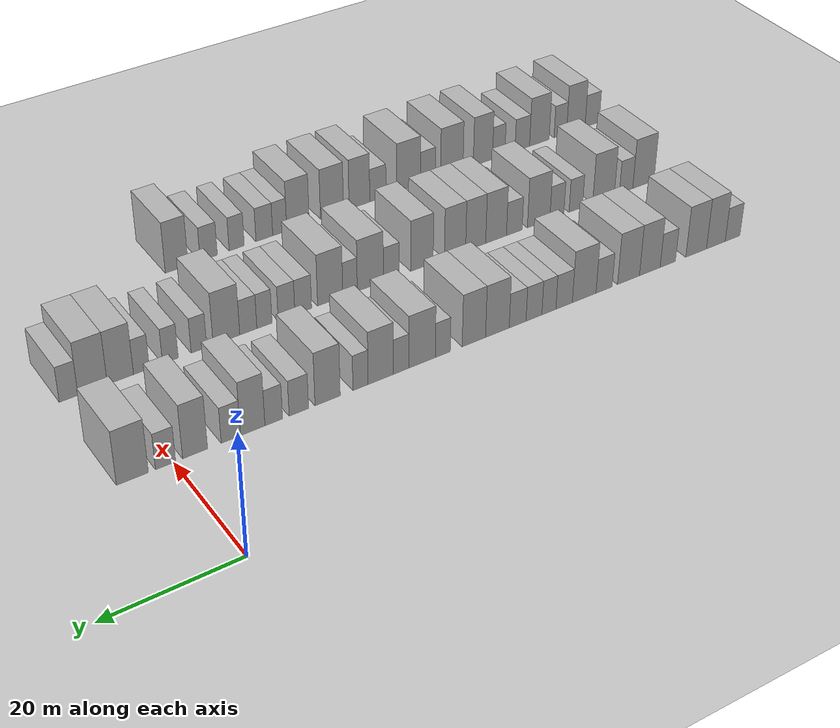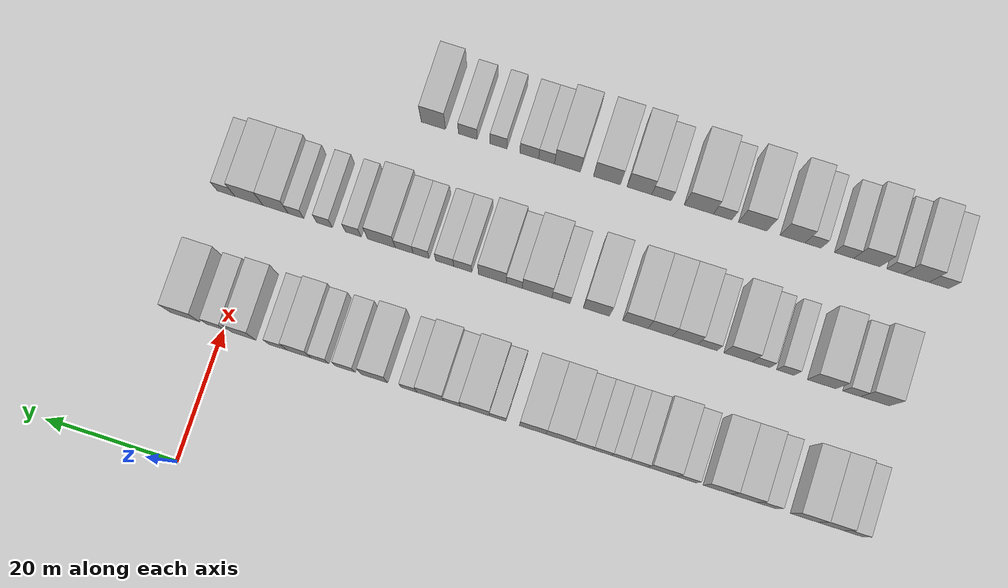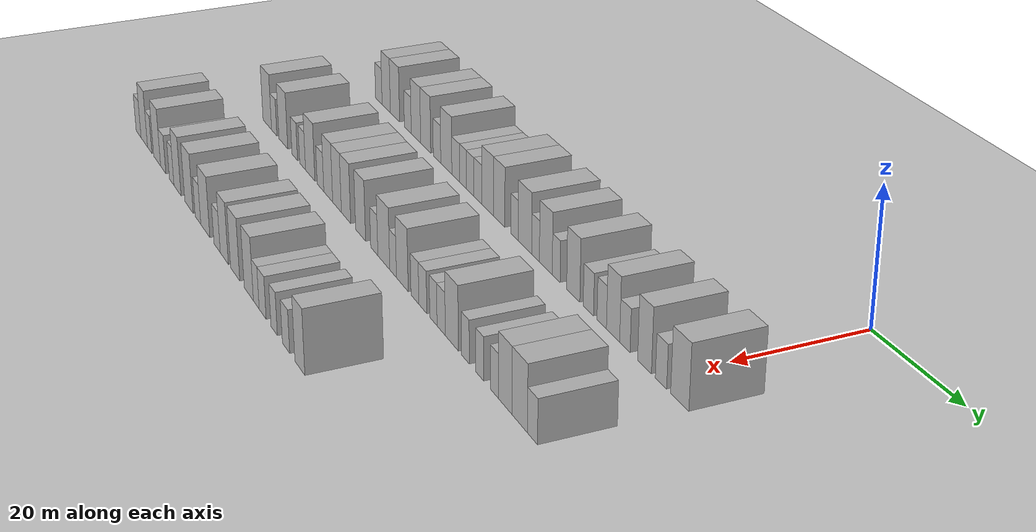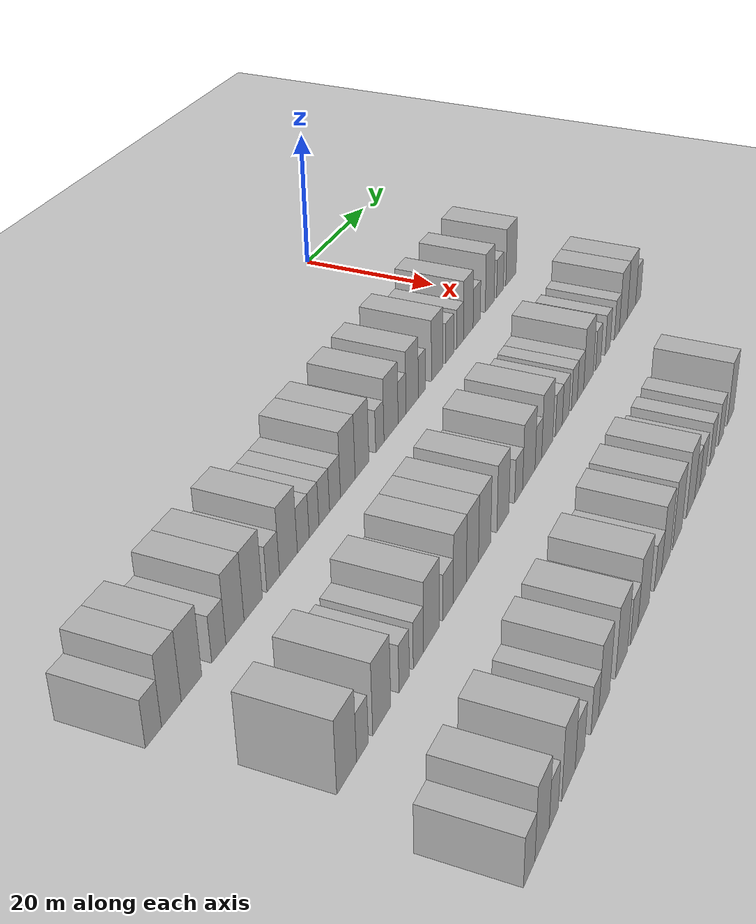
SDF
<sdf version="1.6">
 <world name="default">
  <include><name>ground_plane_1</name><uri>model://HANNAS_ground_plane</uri></include>
  <model name="building_62">
   <static>1</static>
   <pose>25.0000 -94.2913 0 0.000000 0.000000 0.000000</pose>
   <link name="link">
    <pose>0 0 3.00 0 0 0</pose>
    <collision name="collision"><geometry><box><size>10.0000 2.9294 6.0000</size></box></geometry></collision>
    <visual name="visual">
     <cast_shadows>0</cast_shadows>
     <geometry><box><size>10.0000 2.9294 6.0000</size></box></geometry>
     <material>
      <script>
       <uri>model://HANNAS_wall/materials/scripts</uri>
       <uri>model://HANNAS_wall/materials/textures</uri>
       <name>vrc/HANNAS_wall</name>
      </script>
     </material>
    </visual>
   </link>
  </model>
  <model name="building_63">
   <static>1</static>
   <pose>25.0000 -90.9836 0 0.000000 0.000000 0.000000</pose>
   <link name="link">
    <pose>0 0 4.50 0 0 0</pose>
    <collision name="collision"><geometry><box><size>10.0000 3.6861 9.0000</size></box></geometry></collision>
    <visual name="visual">
     <cast_shadows>0</cast_shadows>
     <geometry><box><size>10.0000 3.6861 9.0000</size></box></geometry>
     <material>
      <script>
       <uri>model://HANNAS_wall/materials/scripts</uri>
       <uri>model://HANNAS_wall/materials/textures</uri>
       <name>vrc/HANNAS_wall</name>
      </script>
     </material>
    </visual>
   </link>
  </model>
  <model name="building_64">
   <static>1</static>
   <pose>25.0000 -87.1364 0 0.000000 0.000000 0.000000</pose>
   <link name="link">
    <pose>0 0 4.50 0 0 0</pose>
    <collision name="collision"><geometry><box><size>10.0000 4.0083 9.0000</size></box></geometry></collision>
    <visual name="visual">
     <cast_shadows>0</cast_shadows>
     <geometry><box><size>10.0000 4.0083 9.0000</size></box></geometry>
     <material>
      <script>
       <uri>model://HANNAS_wall/materials/scripts</uri>
       <uri>model://HANNAS_wall/materials/textures</uri>
       <name>vrc/HANNAS_wall</name>
      </script>
     </material>
    </visual>
   </link>
  </model>
  <model name="building_65">
   <static>1</static>
   <pose>25.0000 -81.6730 0 0.000000 0.000000 0.000000</pose>
   <link name="link">
    <pose>0 0 3.00 0 0 0</pose>
    <collision name="collision"><geometry><box><size>10.0000 2.9185 6.0000</size></box></geometry></collision>
    <visual name="visual">
     <cast_shadows>0</cast_shadows>
     <geometry><box><size>10.0000 2.9185 6.0000</size></box></geometry>
     <material>
      <script>
       <uri>model://HANNAS_wall/materials/scripts</uri>
       <uri>model://HANNAS_wall/materials/textures</uri>
       <name>vrc/HANNAS_wall</name>
      </script>
     </material>
    </visual>
   </link>
  </model>
  <model name="building_66">
   <static>1</static>
   <pose>25.0000 -78.2645 0 0.000000 0.000000 0.000000</pose>
   <link name="link">
    <pose>0 0 4.50 0 0 0</pose>
    <collision name="collision"><geometry><box><size>10.0000 3.8984 9.0000</size></box></geometry></collision>
    <visual name="visual">
     <cast_shadows>0</cast_shadows>
     <geometry><box><size>10.0000 3.8984 9.0000</size></box></geometry>
     <material>
      <script>
       <uri>model://HANNAS_wall/materials/scripts</uri>
       <uri>model://HANNAS_wall/materials/textures</uri>
       <name>vrc/HANNAS_wall</name>
      </script>
     </material>
    </visual>
   </link>
  </model>
  <model name="building_67">
   <static>1</static>
   <pose>25.0000 -74.2709 0 0.000000 0.000000 0.000000</pose>
   <link name="link">
    <pose>0 0 4.50 0 0 0</pose>
    <collision name="collision"><geometry><box><size>10.0000 4.0889 9.0000</size></box></geometry></collision>
    <visual name="visual">
     <cast_shadows>0</cast_shadows>
     <geometry><box><size>10.0000 4.0889 9.0000</size></box></geometry>
     <material>
      <script>
       <uri>model://HANNAS_wall/materials/scripts</uri>
       <uri>model://HANNAS_wall/materials/textures</uri>
       <name>vrc/HANNAS_wall</name>
      </script>
     </material>
    </visual>
   </link>
  </model>
  <model name="building_68">
   <static>1</static>
   <pose>25.0000 -69.7475 0 0.000000 0.000000 0.000000</pose>
   <link name="link">
    <pose>0 0 3.00 0 0 0</pose>
    <collision name="collision"><geometry><box><size>10.0000 2.9579 6.0000</size></box></geometry></collision>
    <visual name="visual">
     <cast_shadows>0</cast_shadows>
     <geometry><box><size>10.0000 2.9579 6.0000</size></box></geometry>
     <material>
      <script>
       <uri>model://HANNAS_wall/materials/scripts</uri>
       <uri>model://HANNAS_wall/materials/textures</uri>
       <name>vrc/HANNAS_wall</name>
      </script>
     </material>
    </visual>
   </link>
  </model>
  <model name="building_69">
   <static>1</static>
   <pose>25.0000 -66.1230 0 0.000000 0.000000 0.000000</pose>
   <link name="link">
    <pose>0 0 4.50 0 0 0</pose>
    <collision name="collision"><geometry><box><size>10.0000 4.2911 9.0000</size></box></geometry></collision>
    <visual name="visual">
     <cast_shadows>0</cast_shadows>
     <geometry><box><size>10.0000 4.2911 9.0000</size></box></geometry>
     <material>
      <script>
       <uri>model://HANNAS_wall/materials/scripts</uri>
       <uri>model://HANNAS_wall/materials/textures</uri>
       <name>vrc/HANNAS_wall</name>
      </script>
     </material>
    </visual>
   </link>
  </model>
  <model name="building_70">
   <static>1</static>
   <pose>25.0000 -62.5057 0 0.000000 0.000000 0.000000</pose>
   <link name="link">
    <pose>0 0 3.00 0 0 0</pose>
    <collision name="collision"><geometry><box><size>10.0000 2.9437 6.0000</size></box></geometry></collision>
    <visual name="visual">
     <cast_shadows>0</cast_shadows>
     <geometry><box><size>10.0000 2.9437 6.0000</size></box></geometry>
     <material>
      <script>
       <uri>model://HANNAS_wall/materials/scripts</uri>
       <uri>model://HANNAS_wall/materials/textures</uri>
       <name>vrc/HANNAS_wall</name>
      </script>
     </material>
    </visual>
   </link>
  </model>
  <model name="building_71">
   <static>1</static>
   <pose>25.0000 -59.7899 0 0.000000 0.000000 0.000000</pose>
   <link name="link">
    <pose>0 0 3.00 0 0 0</pose>
    <collision name="collision"><geometry><box><size>10.0000 2.4878 6.0000</size></box></geometry></collision>
    <visual name="visual">
     <cast_shadows>0</cast_shadows>
     <geometry><box><size>10.0000 2.4878 6.0000</size></box></geometry>
     <material>
      <script>
       <uri>model://HANNAS_wall/materials/scripts</uri>
       <uri>model://HANNAS_wall/materials/textures</uri>
       <name>vrc/HANNAS_wall</name>
      </script>
     </material>
    </visual>
   </link>
  </model>
  <model name="building_72">
   <static>1</static>
   <pose>25.0000 -57.1538 0 0.000000 0.000000 0.000000</pose>
   <link name="link">
    <pose>0 0 3.00 0 0 0</pose>
    <collision name="collision"><geometry><box><size>10.0000 2.7846 6.0000</size></box></geometry></collision>
    <visual name="visual">
     <cast_shadows>0</cast_shadows>
     <geometry><box><size>10.0000 2.7846 6.0000</size></box></geometry>
     <material>
      <script>
       <uri>model://HANNAS_wall/materials/scripts</uri>
       <uri>model://HANNAS_wall/materials/textures</uri>
       <name>vrc/HANNAS_wall</name>
      </script>
     </material>
    </visual>
   </link>
  </model>
  <model name="building_73">
   <static>1</static>
   <pose>25.0000 -54.2979 0 0.000000 0.000000 0.000000</pose>
   <link name="link">
    <pose>0 0 3.00 0 0 0</pose>
    <collision name="collision"><geometry><box><size>10.0000 2.9271 6.0000</size></box></geometry></collision>
    <visual name="visual">
     <cast_shadows>0</cast_shadows>
     <geometry><box><size>10.0000 2.9271 6.0000</size></box></geometry>
     <material>
      <script>
       <uri>model://HANNAS_wall/materials/scripts</uri>
       <uri>model://HANNAS_wall/materials/textures</uri>
       <name>vrc/HANNAS_wall</name>
      </script>
     </material>
    </visual>
   </link>
  </model>
  <model name="building_74">
   <static>1</static>
   <pose>25.0000 -50.7964 0 0.000000 0.000000 0.000000</pose>
   <link name="link">
    <pose>0 0 4.50 0 0 0</pose>
    <collision name="collision"><geometry><box><size>10.0000 4.0761 9.0000</size></box></geometry></collision>
    <visual name="visual">
     <cast_shadows>0</cast_shadows>
     <geometry><box><size>10.0000 4.0761 9.0000</size></box></geometry>
     <material>
      <script>
       <uri>model://HANNAS_wall/materials/scripts</uri>
       <uri>model://HANNAS_wall/materials/textures</uri>
       <name>vrc/HANNAS_wall</name>
      </script>
     </material>
    </visual>
   </link>
  </model>
  <model name="building_75">
   <static>1</static>
   <pose>25.0000 -46.7807 0 0.000000 0.000000 0.000000</pose>
   <link name="link">
    <pose>0 0 4.50 0 0 0</pose>
    <collision name="collision"><geometry><box><size>10.0000 3.9552 9.0000</size></box></geometry></collision>
    <visual name="visual">
     <cast_shadows>0</cast_shadows>
     <geometry><box><size>10.0000 3.9552 9.0000</size></box></geometry>
     <material>
      <script>
       <uri>model://HANNAS_wall/materials/scripts</uri>
       <uri>model://HANNAS_wall/materials/textures</uri>
       <name>vrc/HANNAS_wall</name>
      </script>
     </material>
    </visual>
   </link>
  </model>
  <model name="building_76">
   <static>1</static>
   <pose>25.0000 -41.5595 0 0.000000 0.000000 0.000000</pose>
   <link name="link">
    <pose>0 0 3.00 0 0 0</pose>
    <collision name="collision"><geometry><box><size>10.0000 2.4872 6.0000</size></box></geometry></collision>
    <visual name="visual">
     <cast_shadows>0</cast_shadows>
     <geometry><box><size>10.0000 2.4872 6.0000</size></box></geometry>
     <material>
      <script>
       <uri>model://HANNAS_wall/materials/scripts</uri>
       <uri>model://HANNAS_wall/materials/textures</uri>
       <name>vrc/HANNAS_wall</name>
      </script>
     </material>
    </visual>
   </link>
  </model>
  <model name="building_77">
   <static>1</static>
   <pose>25.0000 -38.1234 0 0.000000 0.000000 0.000000</pose>
   <link name="link">
    <pose>0 0 4.50 0 0 0</pose>
    <collision name="collision"><geometry><box><size>10.0000 4.3851 9.0000</size></box></geometry></collision>
    <visual name="visual">
     <cast_shadows>0</cast_shadows>
     <geometry><box><size>10.0000 4.3851 9.0000</size></box></geometry>
     <material>
      <script>
       <uri>model://HANNAS_wall/materials/scripts</uri>
       <uri>model://HANNAS_wall/materials/textures</uri>
       <name>vrc/HANNAS_wall</name>
      </script>
     </material>
    </visual>
   </link>
  </model>
  <model name="building_78">
   <static>1</static>
   <pose>25.0000 -34.6785 0 0.000000 0.000000 0.000000</pose>
   <link name="link">
    <pose>0 0 3.00 0 0 0</pose>
    <collision name="collision"><geometry><box><size>10.0000 2.5047 6.0000</size></box></geometry></collision>
    <visual name="visual">
     <cast_shadows>0</cast_shadows>
     <geometry><box><size>10.0000 2.5047 6.0000</size></box></geometry>
     <material>
      <script>
       <uri>model://HANNAS_wall/materials/scripts</uri>
       <uri>model://HANNAS_wall/materials/textures</uri>
       <name>vrc/HANNAS_wall</name>
      </script>
     </material>
    </visual>
   </link>
  </model>
  <model name="building_79">
   <static>1</static>
   <pose>25.0000 -31.4091 0 0.000000 0.000000 0.000000</pose>
   <link name="link">
    <pose>0 0 4.50 0 0 0</pose>
    <collision name="collision"><geometry><box><size>10.0000 4.0342 9.0000</size></box></geometry></collision>
    <visual name="visual">
     <cast_shadows>0</cast_shadows>
     <geometry><box><size>10.0000 4.0342 9.0000</size></box></geometry>
     <material>
      <script>
       <uri>model://HANNAS_wall/materials/scripts</uri>
       <uri>model://HANNAS_wall/materials/textures</uri>
       <name>vrc/HANNAS_wall</name>
      </script>
     </material>
    </visual>
   </link>
  </model>
  <model name="building_80">
   <static>1</static>
   <pose>25.0000 -28.1832 0 0.000000 0.000000 0.000000</pose>
   <link name="link">
    <pose>0 0 3.00 0 0 0</pose>
    <collision name="collision"><geometry><box><size>10.0000 2.4177 6.0000</size></box></geometry></collision>
    <visual name="visual">
     <cast_shadows>0</cast_shadows>
     <geometry><box><size>10.0000 2.4177 6.0000</size></box></geometry>
     <material>
      <script>
       <uri>model://HANNAS_wall/materials/scripts</uri>
       <uri>model://HANNAS_wall/materials/textures</uri>
       <name>vrc/HANNAS_wall</name>
      </script>
     </material>
    </visual>
   </link>
  </model>
  <model name="building_81">
   <static>1</static>
   <pose>25.0000 -23.0104 0 0.000000 0.000000 0.000000</pose>
   <link name="link">
    <pose>0 0 4.50 0 0 0</pose>
    <collision name="collision"><geometry><box><size>10.0000 3.9279 9.0000</size></box></geometry></collision>
    <visual name="visual">
     <cast_shadows>0</cast_shadows>
     <geometry><box><size>10.0000 3.9279 9.0000</size></box></geometry>
     <material>
      <script>
       <uri>model://HANNAS_wall/materials/scripts</uri>
       <uri>model://HANNAS_wall/materials/textures</uri>
       <name>vrc/HANNAS_wall</name>
      </script>
     </material>
    </visual>
   </link>
  </model>
  <model name="building_82">
   <static>1</static>
   <pose>25.0000 -18.5566 0 0.000000 0.000000 0.000000</pose>
   <link name="link">
    <pose>0 0 3.00 0 0 0</pose>
    <collision name="collision"><geometry><box><size>10.0000 2.9796 6.0000</size></box></geometry></collision>
    <visual name="visual">
     <cast_shadows>0</cast_shadows>
     <geometry><box><size>10.0000 2.9796 6.0000</size></box></geometry>
     <material>
      <script>
       <uri>model://HANNAS_wall/materials/scripts</uri>
       <uri>model://HANNAS_wall/materials/textures</uri>
       <name>vrc/HANNAS_wall</name>
      </script>
     </material>
    </visual>
   </link>
  </model>
  <model name="building_83">
   <static>1</static>
   <pose>25.0000 -14.7358 0 0.000000 0.000000 0.000000</pose>
   <link name="link">
    <pose>0 0 3.00 0 0 0</pose>
    <collision name="collision"><geometry><box><size>10.0000 2.6619 6.0000</size></box></geometry></collision>
    <visual name="visual">
     <cast_shadows>0</cast_shadows>
     <geometry><box><size>10.0000 2.6619 6.0000</size></box></geometry>
     <material>
      <script>
       <uri>model://HANNAS_wall/materials/scripts</uri>
       <uri>model://HANNAS_wall/materials/textures</uri>
       <name>vrc/HANNAS_wall</name>
      </script>
     </material>
    </visual>
   </link>
  </model>
  <model name="building_84">
   <static>1</static>
   <pose>25.0000 -11.5752 0 0.000000 0.000000 0.000000</pose>
   <link name="link">
    <pose>0 0 4.50 0 0 0</pose>
    <collision name="collision"><geometry><box><size>10.0000 3.6592 9.0000</size></box></geometry></collision>
    <visual name="visual">
     <cast_shadows>0</cast_shadows>
     <geometry><box><size>10.0000 3.6592 9.0000</size></box></geometry>
     <material>
      <script>
       <uri>model://HANNAS_wall/materials/scripts</uri>
       <uri>model://HANNAS_wall/materials/textures</uri>
       <name>vrc/HANNAS_wall</name>
      </script>
     </material>
    </visual>
   </link>
  </model>
  <model name="building_85">
   <static>1</static>
   <pose>25.0000 -8.3293 0 0.000000 0.000000 0.000000</pose>
   <link name="link">
    <pose>0 0 3.00 0 0 0</pose>
    <collision name="collision"><geometry><box><size>10.0000 2.8327 6.0000</size></box></geometry></collision>
    <visual name="visual">
     <cast_shadows>0</cast_shadows>
     <geometry><box><size>10.0000 2.8327 6.0000</size></box></geometry>
     <material>
      <script>
       <uri>model://HANNAS_wall/materials/scripts</uri>
       <uri>model://HANNAS_wall/materials/textures</uri>
       <name>vrc/HANNAS_wall</name>
      </script>
     </material>
    </visual>
   </link>
  </model>
  <model name="building_86">
   <static>1</static>
   <pose>25.0000 -3.1027 0 0.000000 0.000000 0.000000</pose>
   <link name="link">
    <pose>0 0 4.50 0 0 0</pose>
    <collision name="collision"><geometry><box><size>10.0000 3.6206 9.0000</size></box></geometry></collision>
    <visual name="visual">
     <cast_shadows>0</cast_shadows>
     <geometry><box><size>10.0000 3.6206 9.0000</size></box></geometry>
     <material>
      <script>
       <uri>model://HANNAS_wall/materials/scripts</uri>
       <uri>model://HANNAS_wall/materials/textures</uri>
       <name>vrc/HANNAS_wall</name>
      </script>
     </material>
    </visual>
   </link>
  </model>
  <model name="building_87">
   <static>1</static>
   <pose>25.0000 1.1421 0 0.000000 0.000000 0.000000</pose>
   <link name="link">
    <pose>0 0 3.00 0 0 0</pose>
    <collision name="collision"><geometry><box><size>10.0000 2.8690 6.0000</size></box></geometry></collision>
    <visual name="visual">
     <cast_shadows>0</cast_shadows>
     <geometry><box><size>10.0000 2.8690 6.0000</size></box></geometry>
     <material>
      <script>
       <uri>model://HANNAS_wall/materials/scripts</uri>
       <uri>model://HANNAS_wall/materials/textures</uri>
       <name>vrc/HANNAS_wall</name>
      </script>
     </material>
    </visual>
   </link>
  </model>
  <model name="building_88">
   <static>1</static>
   <pose>25.0000 5.8203 0 0.000000 0.000000 0.000000</pose>
   <link name="link">
    <pose>0 0 4.50 0 0 0</pose>
    <collision name="collision"><geometry><box><size>10.0000 4.4875 9.0000</size></box></geometry></collision>
    <visual name="visual">
     <cast_shadows>0</cast_shadows>
     <geometry><box><size>10.0000 4.4875 9.0000</size></box></geometry>
     <material>
      <script>
       <uri>model://HANNAS_wall/materials/scripts</uri>
       <uri>model://HANNAS_wall/materials/textures</uri>
       <name>vrc/HANNAS_wall</name>
      </script>
     </material>
    </visual>
   </link>
  </model>
  <model name="building_230">
   <static>1</static>
   <pose>44.0000 -92.2120 0 0.000000 0.000000 0.000000</pose>
   <link name="link">
    <pose>0 0 4.50 0 0 0</pose>
    <collision name="collision"><geometry><box><size>10.0000 4.2855 9.0000</size></box></geometry></collision>
    <visual name="visual">
     <cast_shadows>0</cast_shadows>
     <geometry><box><size>10.0000 4.2855 9.0000</size></box></geometry>
     <material>
      <script>
       <uri>model://HANNAS_wall/materials/scripts</uri>
       <uri>model://HANNAS_wall/materials/textures</uri>
       <name>vrc/HANNAS_wall</name>
      </script>
     </material>
    </visual>
   </link>
  </model>
  <model name="building_231">
   <static>1</static>
   <pose>44.0000 -88.7351 0 0.000000 0.000000 0.000000</pose>
   <link name="link">
    <pose>0 0 3.00 0 0 0</pose>
    <collision name="collision"><geometry><box><size>10.0000 2.6683 6.0000</size></box></geometry></collision>
    <visual name="visual">
     <cast_shadows>0</cast_shadows>
     <geometry><box><size>10.0000 2.6683 6.0000</size></box></geometry>
     <material>
      <script>
       <uri>model://HANNAS_wall/materials/scripts</uri>
       <uri>model://HANNAS_wall/materials/textures</uri>
       <name>vrc/HANNAS_wall</name>
      </script>
     </material>
    </visual>
   </link>
  </model>
  <model name="building_232">
   <static>1</static>
   <pose>44.0000 -84.2660 0 0.000000 0.000000 0.000000</pose>
   <link name="link">
    <pose>0 0 4.50 0 0 0</pose>
    <collision name="collision"><geometry><box><size>10.0000 4.2700 9.0000</size></box></geometry></collision>
    <visual name="visual">
     <cast_shadows>0</cast_shadows>
     <geometry><box><size>10.0000 4.2700 9.0000</size></box></geometry>
     <material>
      <script>
       <uri>model://HANNAS_wall/materials/scripts</uri>
       <uri>model://HANNAS_wall/materials/textures</uri>
       <name>vrc/HANNAS_wall</name>
      </script>
     </material>
    </visual>
   </link>
  </model>
  <model name="building_233">
   <static>1</static>
   <pose>44.0000 -78.8281 0 0.000000 0.000000 0.000000</pose>
   <link name="link">
    <pose>0 0 3.00 0 0 0</pose>
    <collision name="collision"><geometry><box><size>10.0000 2.6058 6.0000</size></box></geometry></collision>
    <visual name="visual">
     <cast_shadows>0</cast_shadows>
     <geometry><box><size>10.0000 2.6058 6.0000</size></box></geometry>
     <material>
      <script>
       <uri>model://HANNAS_wall/materials/scripts</uri>
       <uri>model://HANNAS_wall/materials/textures</uri>
       <name>vrc/HANNAS_wall</name>
      </script>
     </material>
    </visual>
   </link>
  </model>
  <model name="building_234">
   <static>1</static>
   <pose>44.0000 -75.1882 0 0.000000 0.000000 0.000000</pose>
   <link name="link">
    <pose>0 0 3.00 0 0 0</pose>
    <collision name="collision"><geometry><box><size>10.0000 2.6739 6.0000</size></box></geometry></collision>
    <visual name="visual">
     <cast_shadows>0</cast_shadows>
     <geometry><box><size>10.0000 2.6739 6.0000</size></box></geometry>
     <material>
      <script>
       <uri>model://HANNAS_wall/materials/scripts</uri>
       <uri>model://HANNAS_wall/materials/textures</uri>
       <name>vrc/HANNAS_wall</name>
      </script>
     </material>
    </visual>
   </link>
  </model>
  <model name="building_235">
   <static>1</static>
   <pose>44.0000 -71.7204 0 0.000000 0.000000 0.000000</pose>
   <link name="link">
    <pose>0 0 4.50 0 0 0</pose>
    <collision name="collision"><geometry><box><size>10.0000 4.2618 9.0000</size></box></geometry></collision>
    <visual name="visual">
     <cast_shadows>0</cast_shadows>
     <geometry><box><size>10.0000 4.2618 9.0000</size></box></geometry>
     <material>
      <script>
       <uri>model://HANNAS_wall/materials/scripts</uri>
       <uri>model://HANNAS_wall/materials/textures</uri>
       <name>vrc/HANNAS_wall</name>
      </script>
     </material>
    </visual>
   </link>
  </model>
  <model name="building_236">
   <static>1</static>
   <pose>44.0000 -67.1307 0 0.000000 0.000000 0.000000</pose>
   <link name="link">
    <pose>0 0 3.00 0 0 0</pose>
    <collision name="collision"><geometry><box><size>10.0000 2.9176 6.0000</size></box></geometry></collision>
    <visual name="visual">
     <cast_shadows>0</cast_shadows>
     <geometry><box><size>10.0000 2.9176 6.0000</size></box></geometry>
     <material>
      <script>
       <uri>model://HANNAS_wall/materials/scripts</uri>
       <uri>model://HANNAS_wall/materials/textures</uri>
       <name>vrc/HANNAS_wall</name>
      </script>
     </material>
    </visual>
   </link>
  </model>
  <model name="building_237">
   <static>1</static>
   <pose>44.0000 -63.7560 0 0.000000 0.000000 0.000000</pose>
   <link name="link">
    <pose>0 0 4.50 0 0 0</pose>
    <collision name="collision"><geometry><box><size>10.0000 3.8317 9.0000</size></box></geometry></collision>
    <visual name="visual">
     <cast_shadows>0</cast_shadows>
     <geometry><box><size>10.0000 3.8317 9.0000</size></box></geometry>
     <material>
      <script>
       <uri>model://HANNAS_wall/materials/scripts</uri>
       <uri>model://HANNAS_wall/materials/textures</uri>
       <name>vrc/HANNAS_wall</name>
      </script>
     </material>
    </visual>
   </link>
  </model>
  <model name="building_238">
   <static>1</static>
   <pose>44.0000 -60.0075 0 0.000000 0.000000 0.000000</pose>
   <link name="link">
    <pose>0 0 4.50 0 0 0</pose>
    <collision name="collision"><geometry><box><size>10.0000 3.6653 9.0000</size></box></geometry></collision>
    <visual name="visual">
     <cast_shadows>0</cast_shadows>
     <geometry><box><size>10.0000 3.6653 9.0000</size></box></geometry>
     <material>
      <script>
       <uri>model://HANNAS_wall/materials/scripts</uri>
       <uri>model://HANNAS_wall/materials/textures</uri>
       <name>vrc/HANNAS_wall</name>
      </script>
     </material>
    </visual>
   </link>
  </model>
  <model name="building_239">
   <static>1</static>
   <pose>44.0000 -56.2583 0 0.000000 0.000000 0.000000</pose>
   <link name="link">
    <pose>0 0 4.50 0 0 0</pose>
    <collision name="collision"><geometry><box><size>10.0000 3.8332 9.0000</size></box></geometry></collision>
    <visual name="visual">
     <cast_shadows>0</cast_shadows>
     <geometry><box><size>10.0000 3.8332 9.0000</size></box></geometry>
     <material>
      <script>
       <uri>model://HANNAS_wall/materials/scripts</uri>
       <uri>model://HANNAS_wall/materials/textures</uri>
       <name>vrc/HANNAS_wall</name>
      </script>
     </material>
    </visual>
   </link>
  </model>
  <model name="building_240">
   <static>1</static>
   <pose>44.0000 -50.3608 0 0.000000 0.000000 0.000000</pose>
   <link name="link">
    <pose>0 0 4.50 0 0 0</pose>
    <collision name="collision"><geometry><box><size>10.0000 3.9616 9.0000</size></box></geometry></collision>
    <visual name="visual">
     <cast_shadows>0</cast_shadows>
     <geometry><box><size>10.0000 3.9616 9.0000</size></box></geometry>
     <material>
      <script>
       <uri>model://HANNAS_wall/materials/scripts</uri>
       <uri>model://HANNAS_wall/materials/textures</uri>
       <name>vrc/HANNAS_wall</name>
      </script>
     </material>
    </visual>
   </link>
  </model>
  <model name="building_241">
   <static>1</static>
   <pose>44.0000 -45.0014 0 0.000000 0.000000 0.000000</pose>
   <link name="link">
    <pose>0 0 3.00 0 0 0</pose>
    <collision name="collision"><geometry><box><size>10.0000 2.7573 6.0000</size></box></geometry></collision>
    <visual name="visual">
     <cast_shadows>0</cast_shadows>
     <geometry><box><size>10.0000 2.7573 6.0000</size></box></geometry>
     <material>
      <script>
       <uri>model://HANNAS_wall/materials/scripts</uri>
       <uri>model://HANNAS_wall/materials/textures</uri>
       <name>vrc/HANNAS_wall</name>
      </script>
     </material>
    </visual>
   </link>
  </model>
  <model name="building_242">
   <static>1</static>
   <pose>44.0000 -41.3822 0 0.000000 0.000000 0.000000</pose>
   <link name="link">
    <pose>0 0 4.50 0 0 0</pose>
    <collision name="collision"><geometry><box><size>10.0000 4.4811 9.0000</size></box></geometry></collision>
    <visual name="visual">
     <cast_shadows>0</cast_shadows>
     <geometry><box><size>10.0000 4.4811 9.0000</size></box></geometry>
     <material>
      <script>
       <uri>model://HANNAS_wall/materials/scripts</uri>
       <uri>model://HANNAS_wall/materials/textures</uri>
       <name>vrc/HANNAS_wall</name>
      </script>
     </material>
    </visual>
   </link>
  </model>
  <model name="building_243">
   <static>1</static>
   <pose>44.0000 -37.9151 0 0.000000 0.000000 0.000000</pose>
   <link name="link">
    <pose>0 0 3.00 0 0 0</pose>
    <collision name="collision"><geometry><box><size>10.0000 2.4532 6.0000</size></box></geometry></collision>
    <visual name="visual">
     <cast_shadows>0</cast_shadows>
     <geometry><box><size>10.0000 2.4532 6.0000</size></box></geometry>
     <material>
      <script>
       <uri>model://HANNAS_wall/materials/scripts</uri>
       <uri>model://HANNAS_wall/materials/textures</uri>
       <name>vrc/HANNAS_wall</name>
      </script>
     </material>
    </visual>
   </link>
  </model>
  <model name="building_244">
   <static>1</static>
   <pose>44.0000 -34.5697 0 0.000000 0.000000 0.000000</pose>
   <link name="link">
    <pose>0 0 4.50 0 0 0</pose>
    <collision name="collision"><geometry><box><size>10.0000 4.2376 9.0000</size></box></geometry></collision>
    <visual name="visual">
     <cast_shadows>0</cast_shadows>
     <geometry><box><size>10.0000 4.2376 9.0000</size></box></geometry>
     <material>
      <script>
       <uri>model://HANNAS_wall/materials/scripts</uri>
       <uri>model://HANNAS_wall/materials/textures</uri>
       <name>vrc/HANNAS_wall</name>
      </script>
     </material>
    </visual>
   </link>
  </model>
  <model name="building_245">
   <static>1</static>
   <pose>44.0000 -30.0746 0 0.000000 0.000000 0.000000</pose>
   <link name="link">
    <pose>0 0 3.00 0 0 0</pose>
    <collision name="collision"><geometry><box><size>10.0000 2.7525 6.0000</size></box></geometry></collision>
    <visual name="visual">
     <cast_shadows>0</cast_shadows>
     <geometry><box><size>10.0000 2.7525 6.0000</size></box></geometry>
     <material>
      <script>
       <uri>model://HANNAS_wall/materials/scripts</uri>
       <uri>model://HANNAS_wall/materials/textures</uri>
       <name>vrc/HANNAS_wall</name>
      </script>
     </material>
    </visual>
   </link>
  </model>
  <model name="building_246">
   <static>1</static>
   <pose>44.0000 -27.3279 0 0.000000 0.000000 0.000000</pose>
   <link name="link">
    <pose>0 0 3.00 0 0 0</pose>
    <collision name="collision"><geometry><box><size>10.0000 2.7408 6.0000</size></box></geometry></collision>
    <visual name="visual">
     <cast_shadows>0</cast_shadows>
     <geometry><box><size>10.0000 2.7408 6.0000</size></box></geometry>
     <material>
      <script>
       <uri>model://HANNAS_wall/materials/scripts</uri>
       <uri>model://HANNAS_wall/materials/textures</uri>
       <name>vrc/HANNAS_wall</name>
      </script>
     </material>
    </visual>
   </link>
  </model>
  <model name="building_247">
   <static>1</static>
   <pose>44.0000 -23.7330 0 0.000000 0.000000 0.000000</pose>
   <link name="link">
    <pose>0 0 3.00 0 0 0</pose>
    <collision name="collision"><geometry><box><size>10.0000 2.4491 6.0000</size></box></geometry></collision>
    <visual name="visual">
     <cast_shadows>0</cast_shadows>
     <geometry><box><size>10.0000 2.4491 6.0000</size></box></geometry>
     <material>
      <script>
       <uri>model://HANNAS_wall/materials/scripts</uri>
       <uri>model://HANNAS_wall/materials/textures</uri>
       <name>vrc/HANNAS_wall</name>
      </script>
     </material>
    </visual>
   </link>
  </model>
  <model name="building_248">
   <static>1</static>
   <pose>44.0000 -21.1385 0 0.000000 0.000000 0.000000</pose>
   <link name="link">
    <pose>0 0 3.00 0 0 0</pose>
    <collision name="collision"><geometry><box><size>10.0000 2.7399 6.0000</size></box></geometry></collision>
    <visual name="visual">
     <cast_shadows>0</cast_shadows>
     <geometry><box><size>10.0000 2.7399 6.0000</size></box></geometry>
     <material>
      <script>
       <uri>model://HANNAS_wall/materials/scripts</uri>
       <uri>model://HANNAS_wall/materials/textures</uri>
       <name>vrc/HANNAS_wall</name>
      </script>
     </material>
    </visual>
   </link>
  </model>
  <model name="building_249">
   <static>1</static>
   <pose>44.0000 -17.6541 0 0.000000 0.000000 0.000000</pose>
   <link name="link">
    <pose>0 0 4.50 0 0 0</pose>
    <collision name="collision"><geometry><box><size>10.0000 4.2288 9.0000</size></box></geometry></collision>
    <visual name="visual">
     <cast_shadows>0</cast_shadows>
     <geometry><box><size>10.0000 4.2288 9.0000</size></box></geometry>
     <material>
      <script>
       <uri>model://HANNAS_wall/materials/scripts</uri>
       <uri>model://HANNAS_wall/materials/textures</uri>
       <name>vrc/HANNAS_wall</name>
      </script>
     </material>
    </visual>
   </link>
  </model>
  <model name="building_250">
   <static>1</static>
   <pose>44.0000 -13.3273 0 0.000000 0.000000 0.000000</pose>
   <link name="link">
    <pose>0 0 3.00 0 0 0</pose>
    <collision name="collision"><geometry><box><size>10.0000 2.4249 6.0000</size></box></geometry></collision>
    <visual name="visual">
     <cast_shadows>0</cast_shadows>
     <geometry><box><size>10.0000 2.4249 6.0000</size></box></geometry>
     <material>
      <script>
       <uri>model://HANNAS_wall/materials/scripts</uri>
       <uri>model://HANNAS_wall/materials/textures</uri>
       <name>vrc/HANNAS_wall</name>
      </script>
     </material>
    </visual>
   </link>
  </model>
  <model name="building_251">
   <static>1</static>
   <pose>44.0000 -8.9117 0 0.000000 0.000000 0.000000</pose>
   <link name="link">
    <pose>0 0 3.00 0 0 0</pose>
    <collision name="collision"><geometry><box><size>10.0000 2.4062 6.0000</size></box></geometry></collision>
    <visual name="visual">
     <cast_shadows>0</cast_shadows>
     <geometry><box><size>10.0000 2.4062 6.0000</size></box></geometry>
     <material>
      <script>
       <uri>model://HANNAS_wall/materials/scripts</uri>
       <uri>model://HANNAS_wall/materials/textures</uri>
       <name>vrc/HANNAS_wall</name>
      </script>
     </material>
    </visual>
   </link>
  </model>
  <model name="building_252">
   <static>1</static>
   <pose>44.0000 -4.5066 0 0.000000 0.000000 0.000000</pose>
   <link name="link">
    <pose>0 0 3.00 0 0 0</pose>
    <collision name="collision"><geometry><box><size>10.0000 2.4039 6.0000</size></box></geometry></collision>
    <visual name="visual">
     <cast_shadows>0</cast_shadows>
     <geometry><box><size>10.0000 2.4039 6.0000</size></box></geometry>
     <material>
      <script>
       <uri>model://HANNAS_wall/materials/scripts</uri>
       <uri>model://HANNAS_wall/materials/textures</uri>
       <name>vrc/HANNAS_wall</name>
      </script>
     </material>
    </visual>
   </link>
  </model>
  <model name="building_253">
   <static>1</static>
   <pose>44.0000 -1.3485 0 0.000000 0.000000 0.000000</pose>
   <link name="link">
    <pose>0 0 4.50 0 0 0</pose>
    <collision name="collision"><geometry><box><size>10.0000 3.9124 9.0000</size></box></geometry></collision>
    <visual name="visual">
     <cast_shadows>0</cast_shadows>
     <geometry><box><size>10.0000 3.9124 9.0000</size></box></geometry>
     <material>
      <script>
       <uri>model://HANNAS_wall/materials/scripts</uri>
       <uri>model://HANNAS_wall/materials/textures</uri>
       <name>vrc/HANNAS_wall</name>
      </script>
     </material>
    </visual>
   </link>
  </model>
  <model name="building_254">
   <static>1</static>
   <pose>44.0000 2.7650 0 0.000000 0.000000 0.000000</pose>
   <link name="link">
    <pose>0 0 4.50 0 0 0</pose>
    <collision name="collision"><geometry><box><size>10.0000 4.3145 9.0000</size></box></geometry></collision>
    <visual name="visual">
     <cast_shadows>0</cast_shadows>
     <geometry><box><size>10.0000 4.3145 9.0000</size></box></geometry>
     <material>
      <script>
       <uri>model://HANNAS_wall/materials/scripts</uri>
       <uri>model://HANNAS_wall/materials/textures</uri>
       <name>vrc/HANNAS_wall</name>
      </script>
     </material>
    </visual>
   </link>
  </model>
  <model name="building_255">
   <static>1</static>
   <pose>44.0000 6.2912 0 0.000000 0.000000 0.000000</pose>
   <link name="link">
    <pose>0 0 3.00 0 0 0</pose>
    <collision name="collision"><geometry><box><size>10.0000 2.7380 6.0000</size></box></geometry></collision>
    <visual name="visual">
     <cast_shadows>0</cast_shadows>
     <geometry><box><size>10.0000 2.7380 6.0000</size></box></geometry>
     <material>
      <script>
       <uri>model://HANNAS_wall/materials/scripts</uri>
       <uri>model://HANNAS_wall/materials/textures</uri>
       <name>vrc/HANNAS_wall</name>
      </script>
     </material>
    </visual>
   </link>
  </model>
  <model name="building_407">
   <static>1</static>
   <pose>63.0000 -96.4798 0 0.000000 0.000000 0.000000</pose>
   <link name="link">
    <pose>0 0 3.00 0 0 0</pose>
    <collision name="collision"><geometry><box><size>10.0000 2.9730 6.0000</size></box></geometry></collision>
    <visual name="visual">
     <cast_shadows>0</cast_shadows>
     <geometry><box><size>10.0000 2.9730 6.0000</size></box></geometry>
     <material>
      <script>
       <uri>model://HANNAS_wall/materials/scripts</uri>
       <uri>model://HANNAS_wall/materials/textures</uri>
       <name>vrc/HANNAS_wall</name>
      </script>
     </material>
    </visual>
   </link>
  </model>
  <model name="building_408">
   <static>1</static>
   <pose>63.0000 -93.0751 0 0.000000 0.000000 0.000000</pose>
   <link name="link">
    <pose>0 0 4.50 0 0 0</pose>
    <collision name="collision"><geometry><box><size>10.0000 3.8363 9.0000</size></box></geometry></collision>
    <visual name="visual">
     <cast_shadows>0</cast_shadows>
     <geometry><box><size>10.0000 3.8363 9.0000</size></box></geometry>
     <material>
      <script>
       <uri>model://HANNAS_wall/materials/scripts</uri>
       <uri>model://HANNAS_wall/materials/textures</uri>
       <name>vrc/HANNAS_wall</name>
      </script>
     </material>
    </visual>
   </link>
  </model>
  <model name="building_409">
   <static>1</static>
   <pose>63.0000 -89.8728 0 0.000000 0.000000 0.000000</pose>
   <link name="link">
    <pose>0 0 3.00 0 0 0</pose>
    <collision name="collision"><geometry><box><size>10.0000 2.5684 6.0000</size></box></geometry></collision>
    <visual name="visual">
     <cast_shadows>0</cast_shadows>
     <geometry><box><size>10.0000 2.5684 6.0000</size></box></geometry>
     <material>
      <script>
       <uri>model://HANNAS_wall/materials/scripts</uri>
       <uri>model://HANNAS_wall/materials/textures</uri>
       <name>vrc/HANNAS_wall</name>
      </script>
     </material>
    </visual>
   </link>
  </model>
  <model name="building_410">
   <static>1</static>
   <pose>63.0000 -85.6024 0 0.000000 0.000000 0.000000</pose>
   <link name="link">
    <pose>0 0 4.50 0 0 0</pose>
    <collision name="collision"><geometry><box><size>10.0000 3.9724 9.0000</size></box></geometry></collision>
    <visual name="visual">
     <cast_shadows>0</cast_shadows>
     <geometry><box><size>10.0000 3.9724 9.0000</size></box></geometry>
     <material>
      <script>
       <uri>model://HANNAS_wall/materials/scripts</uri>
       <uri>model://HANNAS_wall/materials/textures</uri>
       <name>vrc/HANNAS_wall</name>
      </script>
     </material>
    </visual>
   </link>
  </model>
  <model name="building_411">
   <static>1</static>
   <pose>63.0000 -82.1490 0 0.000000 0.000000 0.000000</pose>
   <link name="link">
    <pose>0 0 3.00 0 0 0</pose>
    <collision name="collision"><geometry><box><size>10.0000 2.9343 6.0000</size></box></geometry></collision>
    <visual name="visual">
     <cast_shadows>0</cast_shadows>
     <geometry><box><size>10.0000 2.9343 6.0000</size></box></geometry>
     <material>
      <script>
       <uri>model://HANNAS_wall/materials/scripts</uri>
       <uri>model://HANNAS_wall/materials/textures</uri>
       <name>vrc/HANNAS_wall</name>
      </script>
     </material>
    </visual>
   </link>
  </model>
  <model name="building_412">
   <static>1</static>
   <pose>63.0000 -77.4513 0 0.000000 0.000000 0.000000</pose>
   <link name="link">
    <pose>0 0 3.00 0 0 0</pose>
    <collision name="collision"><geometry><box><size>10.0000 2.4612 6.0000</size></box></geometry></collision>
    <visual name="visual">
     <cast_shadows>0</cast_shadows>
     <geometry><box><size>10.0000 2.4612 6.0000</size></box></geometry>
     <material>
      <script>
       <uri>model://HANNAS_wall/materials/scripts</uri>
       <uri>model://HANNAS_wall/materials/textures</uri>
       <name>vrc/HANNAS_wall</name>
      </script>
     </material>
    </visual>
   </link>
  </model>
  <model name="building_413">
   <static>1</static>
   <pose>63.0000 -74.3368 0 0.000000 0.000000 0.000000</pose>
   <link name="link">
    <pose>0 0 4.50 0 0 0</pose>
    <collision name="collision"><geometry><box><size>10.0000 3.7678 9.0000</size></box></geometry></collision>
    <visual name="visual">
     <cast_shadows>0</cast_shadows>
     <geometry><box><size>10.0000 3.7678 9.0000</size></box></geometry>
     <material>
      <script>
       <uri>model://HANNAS_wall/materials/scripts</uri>
       <uri>model://HANNAS_wall/materials/textures</uri>
       <name>vrc/HANNAS_wall</name>
      </script>
     </material>
    </visual>
   </link>
  </model>
  <model name="building_414">
   <static>1</static>
   <pose>63.0000 -68.2939 0 0.000000 0.000000 0.000000</pose>
   <link name="link">
    <pose>0 0 4.50 0 0 0</pose>
    <collision name="collision"><geometry><box><size>10.0000 4.3180 9.0000</size></box></geometry></collision>
    <visual name="visual">
     <cast_shadows>0</cast_shadows>
     <geometry><box><size>10.0000 4.3180 9.0000</size></box></geometry>
     <material>
      <script>
       <uri>model://HANNAS_wall/materials/scripts</uri>
       <uri>model://HANNAS_wall/materials/textures</uri>
       <name>vrc/HANNAS_wall</name>
      </script>
     </material>
    </visual>
   </link>
  </model>
  <model name="building_415">
   <static>1</static>
   <pose>63.0000 -63.7222 0 0.000000 0.000000 0.000000</pose>
   <link name="link">
    <pose>0 0 3.00 0 0 0</pose>
    <collision name="collision"><geometry><box><size>10.0000 2.8254 6.0000</size></box></geometry></collision>
    <visual name="visual">
     <cast_shadows>0</cast_shadows>
     <geometry><box><size>10.0000 2.8254 6.0000</size></box></geometry>
     <material>
      <script>
       <uri>model://HANNAS_wall/materials/scripts</uri>
       <uri>model://HANNAS_wall/materials/textures</uri>
       <name>vrc/HANNAS_wall</name>
      </script>
     </material>
    </visual>
   </link>
  </model>
  <model name="building_416">
   <static>1</static>
   <pose>63.0000 -60.0894 0 0.000000 0.000000 0.000000</pose>
   <link name="link">
    <pose>0 0 4.50 0 0 0</pose>
    <collision name="collision"><geometry><box><size>10.0000 4.4404 9.0000</size></box></geometry></collision>
    <visual name="visual">
     <cast_shadows>0</cast_shadows>
     <geometry><box><size>10.0000 4.4404 9.0000</size></box></geometry>
     <material>
      <script>
       <uri>model://HANNAS_wall/materials/scripts</uri>
       <uri>model://HANNAS_wall/materials/textures</uri>
       <name>vrc/HANNAS_wall</name>
      </script>
     </material>
    </visual>
   </link>
  </model>
  <model name="building_417">
   <static>1</static>
   <pose>63.0000 -54.3757 0 0.000000 0.000000 0.000000</pose>
   <link name="link">
    <pose>0 0 3.00 0 0 0</pose>
    <collision name="collision"><geometry><box><size>10.0000 2.9869 6.0000</size></box></geometry></collision>
    <visual name="visual">
     <cast_shadows>0</cast_shadows>
     <geometry><box><size>10.0000 2.9869 6.0000</size></box></geometry>
     <material>
      <script>
       <uri>model://HANNAS_wall/materials/scripts</uri>
       <uri>model://HANNAS_wall/materials/textures</uri>
       <name>vrc/HANNAS_wall</name>
      </script>
     </material>
    </visual>
   </link>
  </model>
  <model name="building_418">
   <static>1</static>
   <pose>63.0000 -50.9946 0 0.000000 0.000000 0.000000</pose>
   <link name="link">
    <pose>0 0 4.50 0 0 0</pose>
    <collision name="collision"><geometry><box><size>10.0000 3.7754 9.0000</size></box></geometry></collision>
    <visual name="visual">
     <cast_shadows>0</cast_shadows>
     <geometry><box><size>10.0000 3.7754 9.0000</size></box></geometry>
     <material>
      <script>
       <uri>model://HANNAS_wall/materials/scripts</uri>
       <uri>model://HANNAS_wall/materials/textures</uri>
       <name>vrc/HANNAS_wall</name>
      </script>
     </material>
    </visual>
   </link>
  </model>
  <model name="building_419">
   <static>1</static>
   <pose>63.0000 -46.0370 0 0.000000 0.000000 0.000000</pose>
   <link name="link">
    <pose>0 0 4.50 0 0 0</pose>
    <collision name="collision"><geometry><box><size>10.0000 4.1398 9.0000</size></box></geometry></collision>
    <visual name="visual">
     <cast_shadows>0</cast_shadows>
     <geometry><box><size>10.0000 4.1398 9.0000</size></box></geometry>
     <material>
      <script>
       <uri>model://HANNAS_wall/materials/scripts</uri>
       <uri>model://HANNAS_wall/materials/textures</uri>
       <name>vrc/HANNAS_wall</name>
      </script>
     </material>
    </visual>
   </link>
  </model>
  <model name="building_420">
   <static>1</static>
   <pose>63.0000 -39.9859 0 0.000000 0.000000 0.000000</pose>
   <link name="link">
    <pose>0 0 4.50 0 0 0</pose>
    <collision name="collision"><geometry><box><size>10.0000 3.9625 9.0000</size></box></geometry></collision>
    <visual name="visual">
     <cast_shadows>0</cast_shadows>
     <geometry><box><size>10.0000 3.9625 9.0000</size></box></geometry>
     <material>
      <script>
       <uri>model://HANNAS_wall/materials/scripts</uri>
       <uri>model://HANNAS_wall/materials/textures</uri>
       <name>vrc/HANNAS_wall</name>
      </script>
     </material>
    </visual>
   </link>
  </model>
  <model name="building_421">
   <static>1</static>
   <pose>63.0000 -36.7809 0 0.000000 0.000000 0.000000</pose>
   <link name="link">
    <pose>0 0 3.00 0 0 0</pose>
    <collision name="collision"><geometry><box><size>10.0000 2.4475 6.0000</size></box></geometry></collision>
    <visual name="visual">
     <cast_shadows>0</cast_shadows>
     <geometry><box><size>10.0000 2.4475 6.0000</size></box></geometry>
     <material>
      <script>
       <uri>model://HANNAS_wall/materials/scripts</uri>
       <uri>model://HANNAS_wall/materials/textures</uri>
       <name>vrc/HANNAS_wall</name>
      </script>
     </material>
    </visual>
   </link>
  </model>
  <model name="building_422">
   <static>1</static>
   <pose>63.0000 -34.1074 0 0.000000 0.000000 0.000000</pose>
   <link name="link">
    <pose>0 0 3.00 0 0 0</pose>
    <collision name="collision"><geometry><box><size>10.0000 2.8996 6.0000</size></box></geometry></collision>
    <visual name="visual">
     <cast_shadows>0</cast_shadows>
     <geometry><box><size>10.0000 2.8996 6.0000</size></box></geometry>
     <material>
      <script>
       <uri>model://HANNAS_wall/materials/scripts</uri>
       <uri>model://HANNAS_wall/materials/textures</uri>
       <name>vrc/HANNAS_wall</name>
      </script>
     </material>
    </visual>
   </link>
  </model>
  <model name="building_423">
   <static>1</static>
   <pose>63.0000 -29.3668 0 0.000000 0.000000 0.000000</pose>
   <link name="link">
    <pose>0 0 3.00 0 0 0</pose>
    <collision name="collision"><geometry><box><size>10.0000 2.5815 6.0000</size></box></geometry></collision>
    <visual name="visual">
     <cast_shadows>0</cast_shadows>
     <geometry><box><size>10.0000 2.5815 6.0000</size></box></geometry>
     <material>
      <script>
       <uri>model://HANNAS_wall/materials/scripts</uri>
       <uri>model://HANNAS_wall/materials/textures</uri>
       <name>vrc/HANNAS_wall</name>
      </script>
     </material>
    </visual>
   </link>
  </model>
  <model name="building_424">
   <static>1</static>
   <pose>63.0000 -24.6372 0 0.000000 0.000000 0.000000</pose>
   <link name="link">
    <pose>0 0 3.00 0 0 0</pose>
    <collision name="collision"><geometry><box><size>10.0000 2.8778 6.0000</size></box></geometry></collision>
    <visual name="visual">
     <cast_shadows>0</cast_shadows>
     <geometry><box><size>10.0000 2.8778 6.0000</size></box></geometry>
     <material>
      <script>
       <uri>model://HANNAS_wall/materials/scripts</uri>
       <uri>model://HANNAS_wall/materials/textures</uri>
       <name>vrc/HANNAS_wall</name>
      </script>
     </material>
    </visual>
   </link>
  </model>
  <model name="building_425">
   <static>1</static>
   <pose>63.0000 -19.3167 0 0.000000 0.000000 0.000000</pose>
   <link name="link">
    <pose>0 0 4.50 0 0 0</pose>
    <collision name="collision"><geometry><box><size>10.0000 3.7631 9.0000</size></box></geometry></collision>
    <visual name="visual">
     <cast_shadows>0</cast_shadows>
     <geometry><box><size>10.0000 3.7631 9.0000</size></box></geometry>
     <material>
      <script>
       <uri>model://HANNAS_wall/materials/scripts</uri>
       <uri>model://HANNAS_wall/materials/textures</uri>
       <name>vrc/HANNAS_wall</name>
      </script>
     </material>
    </visual>
   </link>
  </model>
 </world>
</sdf>
